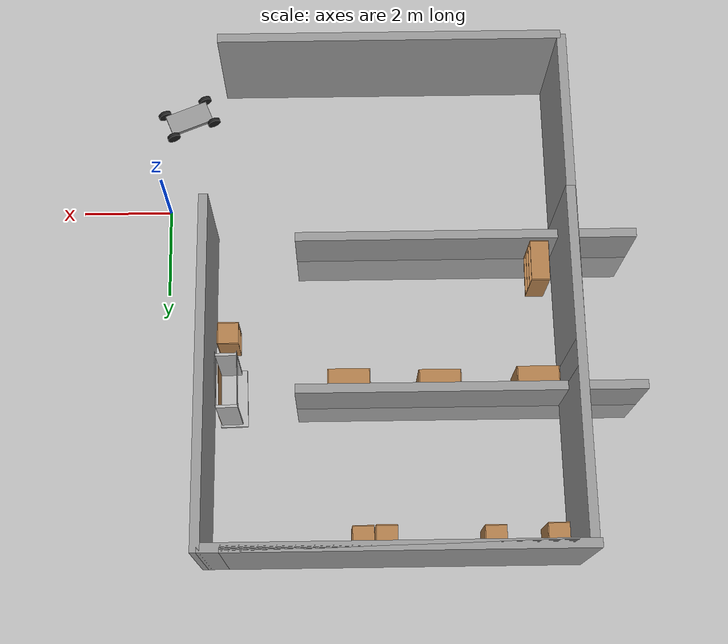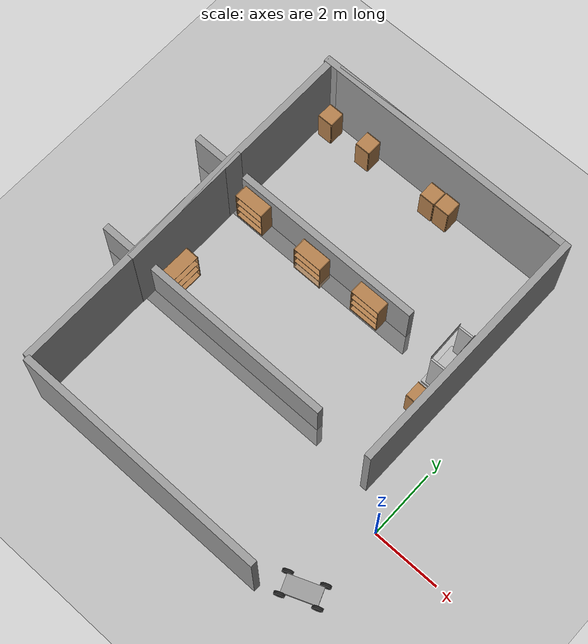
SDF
<sdf version="1.4">
 <world name="default">
  <light name="sun" type="directional">
   <pose>0 0 10 0 -0 0</pose>
   <diffuse>0.8 0.8 0.8 1</diffuse>
   <specular>0.2 0.2 0.2 1</specular>
   <attenuation>
    <range>1000</range>
    <constant>0.9</constant>
    <linear>0.01</linear>
    <quadratic>0.001</quadratic>
   </attenuation>
   <direction>0.5 0.1 -0.9</direction>
  </light>
  <scene><ambient>0.4 0.4 0.4 1</ambient><background>0.7 0.7 0.7 1</background><shadows>1</shadows></scene>
  <physics type="ode">
   <max_step_size>0.01</max_step_size>
   <real_time_factor>1</real_time_factor>
   <real_time_update_rate>100</real_time_update_rate>
   <gravity>0 0 -9.8</gravity>
  </physics>
  <model name="bookshelf">
   <static>1</static>
   <link name="link">
    <inertial><mass>1</mass></inertial>
    <collision name="back">
     <pose>0 0.005 0.6 0 -0 0</pose>
     <geometry><box><size>0.9 0.01 1.2</size></box></geometry>
    </collision>
    <visual name="visual1">
     <pose>0 0.005 0.6 0 -0 0</pose>
     <geometry><box><size>0.9 0.01 1.2</size></box></geometry>
     <material>
      <script><uri>file://media/materials/scripts/gazebo.material</uri><name>Gazebo/Wood</name></script>
     </material>
    </visual>
    <collision name="left_side">
     <pose>0.45 -0.195 0.6 0 -0 0</pose>
     <geometry><box><size>0.02 0.4 1.2</size></box></geometry>
    </collision>
    <visual name="visual2">
     <pose>0.45 -0.195 0.6 0 -0 0</pose>
     <geometry><box><size>0.02 0.4 1.2</size></box></geometry>
     <material>
      <script><uri>file://media/materials/scripts/gazebo.material</uri><name>Gazebo/Wood</name></script>
     </material>
    </visual>
    <collision name="right_side">
     <pose>-0.45 -0.195 0.6 0 -0 0</pose>
     <geometry><box><size>0.02 0.4 1.2</size></box></geometry>
    </collision>
    <visual name="visual3">
     <pose>-0.45 -0.195 0.6 0 -0 0</pose>
     <geometry><box><size>0.02 0.4 1.2</size></box></geometry>
     <material>
      <script><uri>file://media/materials/scripts/gazebo.material</uri><name>Gazebo/Wood</name></script>
     </material>
    </visual>
    <collision name="bottom">
     <pose>0 -0.195 0.03 0 -0 0</pose>
     <geometry><box><size>0.88 0.4 0.06</size></box></geometry>
    </collision>
    <visual name="visual4">
     <pose>0 -0.195 0.03 0 -0 0</pose>
     <geometry><box><size>0.88 0.4 0.06</size></box></geometry>
     <material>
      <script><uri>file://media/materials/scripts/gazebo.material</uri><name>Gazebo/Wood</name></script>
     </material>
    </visual>
    <collision name="top">
     <pose>0 -0.195 1.19 0 -0 0</pose>
     <geometry><box><size>0.88 0.4 0.02</size></box></geometry>
    </collision>
    <visual name="visual5">
     <pose>0 -0.195 1.19 0 -0 0</pose>
     <geometry><box><size>0.88 0.4 0.02</size></box></geometry>
     <material>
      <script><uri>file://media/materials/scripts/gazebo.material</uri><name>Gazebo/Wood</name></script>
     </material>
    </visual>
    <collision name="low_shelf">
     <pose>0 -0.195 0.43 0 -0 0</pose>
     <geometry><box><size>0.88 0.4 0.02</size></box></geometry>
    </collision>
    <visual name="visual6">
     <pose>0 -0.195 0.43 0 -0 0</pose>
     <geometry><box><size>0.88 0.4 0.02</size></box></geometry>
     <material>
      <script><uri>file://media/materials/scripts/gazebo.material</uri><name>Gazebo/Wood</name></script>
     </material>
    </visual>
    <collision name="high_shelf">
     <pose>0 -0.195 0.8 0 -0 0</pose>
     <geometry><box><size>0.88 0.4 0.02</size></box></geometry>
    </collision>
    <visual name="visual7">
     <pose>0 -0.195 0.8 0 -0 0</pose>
     <geometry><box><size>0.88 0.4 0.02</size></box></geometry>
     <material>
      <script><uri>file://media/materials/scripts/gazebo.material</uri><name>Gazebo/Wood</name></script>
     </material>
    </visual>
    <velocity_decay><linear>0</linear><angular>0</angular></velocity_decay>
   </link>
   <pose>-8.08686 4.46557 0 0 -0 0</pose>
  </model>
  <model name="ground_plane_0">
   <static>1</static>
   <link name="link">
    <collision name="collision">
     <geometry><plane><normal>0 0 1</normal><size>100 100</size></plane></geometry>
     <surface><friction><ode><mu>100</mu><mu2>50</mu2></ode></friction></surface>
    </collision>
    <visual name="visual">
     <cast_shadows>0</cast_shadows>
     <geometry><plane><normal>0 0 1</normal><size>100 100</size></plane></geometry>
     <material>
      <script><uri>file://media/materials/scripts/gazebo.material</uri><name>Gazebo/Grey</name></script>
     </material>
    </visual>
    <velocity_decay><linear>0</linear><angular>0</angular></velocity_decay>
   </link>
   <pose>0.497681 0 0 0 -0 0</pose>
  </model>
  <spherical_coordinates>
   <surface_model>EARTH_WGS84</surface_model>
   <latitude_deg>0</latitude_deg>
   <longitude_deg>0</longitude_deg>
   <elevation>0</elevation>
   <heading_deg>0</heading_deg>
  </spherical_coordinates>
  <model name="beer">
   <link name="link">
    <pose>0 0 0.115 0 -0 0</pose>
    <inertial>
     <mass>0.39</mass>
     <inertia><ixx>0.00058</ixx><ixy>0</ixy><ixz>0</ixz><iyy>0.00058</iyy><iyz>0</iyz><izz>0.00019</izz></inertia>
    </inertial>
    <collision name="collision">
     <geometry><cylinder><radius>0.055</radius><length>0.23</length></cylinder></geometry>
    </collision>
    <visual name="visual">
     <geometry><cylinder><radius>0.055</radius><length>0.23</length></cylinder></geometry>
     <material>
      <script>
       <uri>model://beer/materials/scripts</uri>
       <uri>model://beer/materials/textures</uri>
       <name>Beer/Diffuse</name>
      </script>
     </material>
    </visual>
    <velocity_decay><linear>0</linear><angular>0</angular></velocity_decay>
   </link>
   <pose>-5.66457 4.39038 0.192829 -9.5e-05 0.000228 -1.61286</pose>
   <static>0</static>
  </model>
  <model name="bookshelf_0">
   <static>1</static>
   <link name="link">
    <inertial><mass>1</mass></inertial>
    <collision name="back">
     <pose>0 0.005 0.6 0 -0 0</pose>
     <geometry><box><size>0.9 0.01 1.2</size></box></geometry>
    </collision>
    <visual name="visual1">
     <pose>0 0.005 0.6 0 -0 0</pose>
     <geometry><box><size>0.9 0.01 1.2</size></box></geometry>
     <material>
      <script><uri>file://media/materials/scripts/gazebo.material</uri><name>Gazebo/Wood</name></script>
     </material>
    </visual>
    <collision name="left_side">
     <pose>0.45 -0.195 0.6 0 -0 0</pose>
     <geometry><box><size>0.02 0.4 1.2</size></box></geometry>
    </collision>
    <visual name="visual2">
     <pose>0.45 -0.195 0.6 0 -0 0</pose>
     <geometry><box><size>0.02 0.4 1.2</size></box></geometry>
     <material>
      <script><uri>file://media/materials/scripts/gazebo.material</uri><name>Gazebo/Wood</name></script>
     </material>
    </visual>
    <collision name="right_side">
     <pose>-0.45 -0.195 0.6 0 -0 0</pose>
     <geometry><box><size>0.02 0.4 1.2</size></box></geometry>
    </collision>
    <visual name="visual3">
     <pose>-0.45 -0.195 0.6 0 -0 0</pose>
     <geometry><box><size>0.02 0.4 1.2</size></box></geometry>
     <material>
      <script><uri>file://media/materials/scripts/gazebo.material</uri><name>Gazebo/Wood</name></script>
     </material>
    </visual>
    <collision name="bottom">
     <pose>0 -0.195 0.03 0 -0 0</pose>
     <geometry><box><size>0.88 0.4 0.06</size></box></geometry>
    </collision>
    <visual name="visual4">
     <pose>0 -0.195 0.03 0 -0 0</pose>
     <geometry><box><size>0.88 0.4 0.06</size></box></geometry>
     <material>
      <script><uri>file://media/materials/scripts/gazebo.material</uri><name>Gazebo/Wood</name></script>
     </material>
    </visual>
    <collision name="top">
     <pose>0 -0.195 1.19 0 -0 0</pose>
     <geometry><box><size>0.88 0.4 0.02</size></box></geometry>
    </collision>
    <visual name="visual5">
     <pose>0 -0.195 1.19 0 -0 0</pose>
     <geometry><box><size>0.88 0.4 0.02</size></box></geometry>
     <material>
      <script><uri>file://media/materials/scripts/gazebo.material</uri><name>Gazebo/Wood</name></script>
     </material>
    </visual>
    <collision name="low_shelf">
     <pose>0 -0.195 0.43 0 -0 0</pose>
     <geometry><box><size>0.88 0.4 0.02</size></box></geometry>
    </collision>
    <visual name="visual6">
     <pose>0 -0.195 0.43 0 -0 0</pose>
     <geometry><box><size>0.88 0.4 0.02</size></box></geometry>
     <material>
      <script><uri>file://media/materials/scripts/gazebo.material</uri><name>Gazebo/Wood</name></script>
     </material>
    </visual>
    <collision name="high_shelf">
     <pose>0 -0.195 0.8 0 -0 0</pose>
     <geometry><box><size>0.88 0.4 0.02</size></box></geometry>
    </collision>
    <visual name="visual7">
     <pose>0 -0.195 0.8 0 -0 0</pose>
     <geometry><box><size>0.88 0.4 0.02</size></box></geometry>
     <material>
      <script><uri>file://media/materials/scripts/gazebo.material</uri><name>Gazebo/Wood</name></script>
     </material>
    </visual>
    <velocity_decay><linear>0</linear><angular>0</angular></velocity_decay>
   </link>
   <pose>-5.99419 4.44539 -0.246305 0 -0 0</pose>
  </model>
  <model name="cabinet">
   <static>1</static>
   <link name="cabinet_bottom_plate">
    <inertial>
     <pose>0 0 -1 0 -0 0</pose>
     <inertia><ixx>2.05</ixx><ixy>0</ixy><ixz>0</ixz><iyy>2.05</iyy><iyz>0</iyz><izz>2.05</izz></inertia>
     <mass>25</mass>
    </inertial>
    <collision name="cabinet_bottom_plate_geom">
     <pose>0 0 0.01 0 -0 0</pose>
     <geometry><box><size>0.45 0.45 0.02</size></box></geometry>
    </collision>
    <visual name="cabinet_bottom_plate_geom_visual">
     <pose>0 0 0.01 0 -0 0</pose>
     <geometry><box><size>0.45 0.45 0.02</size></box></geometry>
     <material>
      <script><uri>file://media/materials/scripts/gazebo.material</uri><name>Gazebo/Wood</name></script>
     </material>
    </visual>
    <collision name="cabinet_bottom_plate_geom_cabinet_back_plate">
     <pose>0.235 0 0.51 0 -0 0</pose>
     <geometry><box><size>0.02 0.45 1.02</size></box></geometry>
    </collision>
    <visual name="cabinet_bottom_plate_geom_cabinet_back_plate_visual">
     <pose>0.235 0 0.51 0 -0 0</pose>
     <geometry><box><size>0.02 0.45 1.02</size></box></geometry>
     <material>
      <script><uri>file://media/materials/scripts/gazebo.material</uri><name>Gazebo/Wood</name></script>
     </material>
    </visual>
    <collision name="cabinet_bottom_plate_geom_cabinet_left_plate">
     <pose>0 0.235 0.51 0 -0 0</pose>
     <geometry><box><size>0.45 0.02 1.02</size></box></geometry>
    </collision>
    <visual name="cabinet_bottom_plate_geom_cabinet_left_plate_visual">
     <pose>0 0.235 0.51 0 -0 0</pose>
     <geometry><box><size>0.45 0.02 1.02</size></box></geometry>
     <material>
      <script><uri>file://media/materials/scripts/gazebo.material</uri><name>Gazebo/Wood</name></script>
     </material>
    </visual>
    <collision name="cabinet_bottom_plate_geom_cabinet_middle_plate">
     <pose>0 0 0.51 0 -0 0</pose>
     <geometry><box><size>0.45 0.45 0.02</size></box></geometry>
    </collision>
    <visual name="cabinet_bottom_plate_geom_cabinet_middle_plate_visual">
     <pose>0 0 0.51 0 -0 0</pose>
     <geometry><box><size>0.45 0.45 0.02</size></box></geometry>
     <material>
      <script><uri>file://media/materials/scripts/gazebo.material</uri><name>Gazebo/Wood</name></script>
     </material>
    </visual>
    <collision name="cabinet_bottom_plate_geom_cabinet_right_plate">
     <pose>0 -0.235 0.51 0 -0 0</pose>
     <geometry><box><size>0.45 0.02 1.02</size></box></geometry>
    </collision>
    <visual name="cabinet_bottom_plate_geom_cabinet_right_plate_visual">
     <pose>0 -0.235 0.51 0 -0 0</pose>
     <geometry><box><size>0.45 0.02 1.02</size></box></geometry>
     <material>
      <script><uri>file://media/materials/scripts/gazebo.material</uri><name>Gazebo/Wood</name></script>
     </material>
    </visual>
    <collision name="cabinet_bottom_plate_geom_cabinet_top_plate">
     <pose>0 0 1.01 0 -0 0</pose>
     <geometry><box><size>0.45 0.45 0.02</size></box></geometry>
    </collision>
    <visual name="cabinet_bottom_plate_geom_cabinet_top_plate_visual">
     <pose>0 0 1.01 0 -0 0</pose>
     <geometry><box><size>0.45 0.45 0.02</size></box></geometry>
     <material>
      <script><uri>file://media/materials/scripts/gazebo.material</uri><name>Gazebo/Wood</name></script>
     </material>
    </visual>
    <velocity_decay><linear>0</linear><angular>0</angular></velocity_decay>
   </link>
   <pose>-4.77285 7.64898 0.084434 0 -0 0</pose>
  </model>
  <model name="cart_rigid_suspension">
   <link name="chassis">
    <pose>0 0 0.15 0 -0 0</pose>
    <inertial>
     <pose>0.1 0 0 0 -0 0</pose>
     <mass>10</mass>
     <inertia>
      <ixx>0.216667</ixx>
      <iyy>0.841667</iyy>
      <izz>1.04167</izz>
      <ixy>0</ixy>
      <ixz>0</ixz>
      <iyz>0</iyz>
     </inertia>
    </inertial>
    <collision name="collision"><geometry><box><size>1 0.5 0.1</size></box></geometry></collision>
    <visual name="visual">
     <geometry><box><size>1 0.5 0.1</size></box></geometry>
     <material>
      <script><uri>file://media/materials/scripts/gazebo.material</uri><name>Gazebo/Grey</name></script>
     </material>
    </visual>
    <velocity_decay><linear>0</linear><angular>0</angular></velocity_decay>
   </link>
   <link name="wheel_front_left">
    <pose>0.5 0.298 0.15 -1.5708 0 0</pose>
    <inertial>
     <mass>0.5</mass>
     <inertia>
      <ixx>0.00307917</ixx>
      <iyy>0.00307917</iyy>
      <izz>0.005625</izz>
      <ixy>0</ixy>
      <ixz>0</ixz>
      <iyz>0</iyz>
     </inertia>
    </inertial>
    <collision name="collision">
     <geometry><cylinder><radius>0.15</radius><length>0.08</length></cylinder></geometry>
    </collision>
    <visual name="visual">
     <geometry><cylinder><radius>0.15</radius><length>0.08</length></cylinder></geometry>
     <material>
      <script><uri>file://media/materials/scripts/gazebo.material</uri><name>Gazebo/Black</name></script>
     </material>
    </visual>
    <velocity_decay><linear>0</linear><angular>0</angular></velocity_decay>
   </link>
   <joint name="wheel_front_left_spin" type="revolute">
    <parent>chassis</parent>
    <child>wheel_front_left</child>
    <axis><xyz>0 0 1</xyz><limit><lower>-1e+16</lower><upper>1e+16</upper></limit></axis>
   </joint>
   <link name="wheel_front_right">
    <pose>0.5 -0.298 0.15 -1.5708 0 0</pose>
    <inertial>
     <mass>0.5</mass>
     <inertia>
      <ixx>0.00307917</ixx>
      <iyy>0.00307917</iyy>
      <izz>0.005625</izz>
      <ixy>0</ixy>
      <ixz>0</ixz>
      <iyz>0</iyz>
     </inertia>
    </inertial>
    <collision name="collision">
     <geometry><cylinder><radius>0.15</radius><length>0.08</length></cylinder></geometry>
    </collision>
    <visual name="visual">
     <geometry><cylinder><radius>0.15</radius><length>0.08</length></cylinder></geometry>
     <material>
      <script><uri>file://media/materials/scripts/gazebo.material</uri><name>Gazebo/Black</name></script>
     </material>
    </visual>
    <velocity_decay><linear>0</linear><angular>0</angular></velocity_decay>
   </link>
   <joint name="wheel_front_right_spin" type="revolute">
    <parent>chassis</parent>
    <child>wheel_front_right</child>
    <axis><xyz>0 0 1</xyz><limit><lower>-1e+16</lower><upper>1e+16</upper></limit></axis>
   </joint>
   <link name="wheel_rear_left">
    <pose>-0.5 0.298 0.15 -1.5708 0 0</pose>
    <inertial>
     <mass>0.5</mass>
     <inertia>
      <ixx>0.00307917</ixx>
      <iyy>0.00307917</iyy>
      <izz>0.005625</izz>
      <ixy>0</ixy>
      <ixz>0</ixz>
      <iyz>0</iyz>
     </inertia>
    </inertial>
    <collision name="collision">
     <geometry><cylinder><radius>0.15</radius><length>0.08</length></cylinder></geometry>
    </collision>
    <visual name="visual">
     <geometry><cylinder><radius>0.15</radius><length>0.08</length></cylinder></geometry>
     <material>
      <script><uri>file://media/materials/scripts/gazebo.material</uri><name>Gazebo/Black</name></script>
     </material>
    </visual>
    <velocity_decay><linear>0</linear><angular>0</angular></velocity_decay>
   </link>
   <joint name="wheel_rear_left_spin" type="revolute">
    <parent>chassis</parent>
    <child>wheel_rear_left</child>
    <axis><xyz>0 0 1</xyz><limit><lower>-1e+16</lower><upper>1e+16</upper></limit></axis>
   </joint>
   <link name="wheel_rear_right">
    <pose>-0.5 -0.298 0.15 -1.5708 0 0</pose>
    <inertial>
     <mass>0.5</mass>
     <inertia>
      <ixx>0.00307917</ixx>
      <iyy>0.00307917</iyy>
      <izz>0.005625</izz>
      <ixy>0</ixy>
      <ixz>0</ixz>
      <iyz>0</iyz>
     </inertia>
    </inertial>
    <collision name="collision">
     <geometry><cylinder><radius>0.15</radius><length>0.08</length></cylinder></geometry>
    </collision>
    <visual name="visual">
     <geometry><cylinder><radius>0.15</radius><length>0.08</length></cylinder></geometry>
     <material>
      <script><uri>file://media/materials/scripts/gazebo.material</uri><name>Gazebo/Black</name></script>
     </material>
    </visual>
    <velocity_decay><linear>0</linear><angular>0</angular></velocity_decay>
   </link>
   <joint name="wheel_rear_right_spin" type="revolute">
    <parent>chassis</parent>
    <child>wheel_rear_right</child>
    <axis><xyz>0 0 1</xyz><limit><lower>-1e+16</lower><upper>1e+16</upper></limit></axis>
   </joint>
   <pose>-0.376964 -2.30038 7.9e-05 8.2e-05 6.7e-05 -2.76274</pose>
   <static>0</static>
  </model>
  <model name="frc2016_drawbridge">
   <link name="base">
    <inertial>
     <mass>10</mass>
     <pose>0 0 1 0 -0 0</pose>
     <inertia><ixx>3.64907</ixx><ixy>0</ixy><ixz>0</ixz><iyy>4.67075</iyy><iyz>0</iyz><izz>1.66649</izz></inertia>
    </inertial>
    <visual name="platform">
     <pose>0 0 0.0425 0 -0 0</pose>
     <geometry><box><size>1.27 0.5969 0.085</size></box></geometry>
    </visual>
    <collision name="platform">
     <pose>0 0 0.0425 0 -0 0</pose>
     <geometry><box><size>1.27 0.5969 0.085</size></box></geometry>
    </collision>
    <visual name="right_wall">
     <pose>0.55879 0.04444 0.889 0 -0 0</pose>
     <geometry><box><size>0.05715 0.45698 1.77165</size></box></geometry>
    </visual>
    <collision name="right_wall">
     <pose>0.55879 0.04444 0.889 0 -0 0</pose>
     <geometry><box><size>0.05715 0.45698 1.77165</size></box></geometry>
    </collision>
    <visual name="left_wall">
     <pose>-0.55879 0.04444 0.889 0 -0 0</pose>
     <geometry><box><size>0.05715 0.45698 1.77165</size></box></geometry>
    </visual>
    <collision name="left_wall">
     <pose>-0.55879 0.04444 0.889 0 -0 0</pose>
     <geometry><box><size>0.05715 0.45698 1.77165</size></box></geometry>
    </collision>
    <visual name="front_upper_wall">
     <pose>0 0.27611 1.84286 0 -0 0</pose>
     <geometry><box><size>1.1557 0.006347 0.254</size></box></geometry>
    </visual>
    <collision name="front_upper_wall">
     <pose>0 0.27611 1.84286 0 -0 0</pose>
     <geometry><box><size>1.1557 0.006347 0.254</size></box></geometry>
    </collision>
    <visual name="back_upper_wall">
     <pose>0 -0.18722 1.84286 0 -0 0</pose>
     <geometry><box><size>1.1557 0.006347 0.254</size></box></geometry>
    </visual>
    <collision name="back_upper_wall">
     <pose>0 -0.18722 1.84286 0 -0 0</pose>
     <geometry><box><size>1.1557 0.006347 0.254</size></box></geometry>
    </collision>
    <velocity_decay><linear>0</linear><angular>0</angular></velocity_decay>
   </link>
   <link name="bridge">
    <pose>0 0.28245 0.50577 0 -0 0</pose>
    <inertial>
     <mass>2</mass>
     <pose>0 -0.28245 -0.50577 0 -0 0</pose>
     <inertia>
      <ixx>0.139361</ixx>
      <ixy>0</ixy>
      <ixz>0</ixz>
      <iyy>0.357088</iyy>
      <iyz>0</iyz>
      <izz>0.217741</izz>
     </inertia>
    </inertial>
    <visual name="visual">
     <geometry><box><size>1.14298 0.006347 0.9144</size></box></geometry>
     <material><script><name>Gazebo/WoodFloor</name><uri>__default__</uri></script></material>
    </visual>
    <collision name="collision"><geometry><box><size>1.14298 0.006347 0.9144</size></box></geometry></collision>
    <velocity_decay><linear>0</linear><angular>0</angular></velocity_decay>
   </link>
   <joint name="bridge_joint" type="revolute">
    <pose>0 0 -0.4172 0 -0 0</pose>
    <parent>base</parent>
    <child>bridge</child>
    <axis><xyz>1 0 0</xyz><limit><lower>-2</lower><upper>0</upper></limit></axis>
   </joint>
   <pose>-1.49689 4.44058 -0.000207 3e-06 0.000326 -1.54642</pose>
   <static>0</static>
  </model>
  <model name="grey_wall">
   <static>1</static>
   <link name="link">
    <pose>0 0 1.4 0 -0 0</pose>
    <collision name="collision"><geometry><box><size>7.5 0.2 2.8</size></box></geometry></collision>
    <visual name="visual">
     <cast_shadows>0</cast_shadows>
     <geometry><box><size>7.5 0.2 2.8</size></box></geometry>
     <material>
      <script>
       <uri>model://grey_wall/materials/scripts</uri>
       <uri>model://grey_wall/materials/textures</uri>
       <name>vrc/grey_wall</name>
      </script>
     </material>
    </visual>
    <velocity_decay><linear>0</linear><angular>0</angular></velocity_decay>
   </link>
   <pose>-5.17852 8.05791 0 0 -0 0</pose>
  </model>
  <model name="RoboCup SPL Ball_0">
   <static>0</static>
   <link name="ball">
    <inertial>
     <mass>0.0056</mass>
     <inertia>
      <ixx>2.37e-06</ixx>
      <iyy>2.37e-06</iyy>
      <izz>2.37e-06</izz>
      <ixy>0</ixy>
      <ixz>0</ixz>
      <iyz>0</iyz>
     </inertia>
    </inertial>
    <collision name="collision"><geometry><sphere><radius>0.0325</radius></sphere></geometry></collision>
    <visual name="visual">
     <geometry><sphere><radius>0.0325</radius></sphere></geometry>
     <material>
      <script><uri>file://media/materials/scripts/gazebo.material</uri><name>Gazebo/RedBright</name></script>
     </material>
    </visual>
    <velocity_decay><linear>0</linear><angular>0</angular></velocity_decay>
   </link>
   <pose>-6.12244 4.31862 0.226195 0.155685 -1.25458 1.90313</pose>
  </model>
  <model name="grey_wall_0">
   <static>1</static>
   <link name="link">
    <pose>0 0 1.4 0 -0 0</pose>
    <collision name="collision"><geometry><box><size>7.5 0.2 2.8</size></box></geometry></collision>
    <visual name="visual">
     <cast_shadows>0</cast_shadows>
     <geometry><box><size>7.5 0.2 2.8</size></box></geometry>
     <material>
      <script>
       <uri>model://grey_wall/materials/scripts</uri>
       <uri>model://grey_wall/materials/textures</uri>
       <name>vrc/grey_wall</name>
      </script>
     </material>
    </visual>
    <velocity_decay><linear>0</linear><angular>0</angular></velocity_decay>
   </link>
   <pose>-8.76574 0.752835 0 0 0 -1.57097</pose>
  </model>
  <model name="grey_wall_1">
   <static>1</static>
   <link name="link">
    <pose>0 0 1.4 0 -0 0</pose>
    <collision name="collision"><geometry><box><size>7.5 0.2 2.8</size></box></geometry></collision>
    <visual name="visual">
     <cast_shadows>0</cast_shadows>
     <geometry><box><size>7.5 0.2 2.8</size></box></geometry>
     <material>
      <script>
       <uri>model://grey_wall/materials/scripts</uri>
       <uri>model://grey_wall/materials/textures</uri>
       <name>vrc/grey_wall</name>
      </script>
     </material>
    </visual>
    <velocity_decay><linear>0</linear><angular>0</angular></velocity_decay>
   </link>
   <pose>-6.62284 4.56888 -1.32865 0 -0 0</pose>
  </model>
  <model name="grey_wall_2">
   <static>1</static>
   <link name="link">
    <pose>0 0 1.4 0 -0 0</pose>
    <collision name="collision"><geometry><box><size>7.5 0.2 2.8</size></box></geometry></collision>
    <visual name="visual">
     <cast_shadows>0</cast_shadows>
     <geometry><box><size>7.5 0.2 2.8</size></box></geometry>
     <material>
      <script>
       <uri>model://grey_wall/materials/scripts</uri>
       <uri>model://grey_wall/materials/textures</uri>
       <name>vrc/grey_wall</name>
      </script>
     </material>
    </visual>
    <velocity_decay><linear>0</linear><angular>0</angular></velocity_decay>
   </link>
   <pose>-8.76656 4.31578 0 0 0 -1.56736</pose>
  </model>
  <model name="grey_wall_3">
   <static>1</static>
   <link name="link">
    <pose>0 0 1.4 0 -0 0</pose>
    <collision name="collision"><geometry><box><size>7.5 0.2 2.8</size></box></geometry></collision>
    <visual name="visual">
     <cast_shadows>0</cast_shadows>
     <geometry><box><size>7.5 0.2 2.8</size></box></geometry>
     <material>
      <script>
       <uri>model://grey_wall/materials/scripts</uri>
       <uri>model://grey_wall/materials/textures</uri>
       <name>vrc/grey_wall</name>
      </script>
     </material>
    </visual>
    <velocity_decay><linear>0</linear><angular>0</angular></velocity_decay>
   </link>
   <pose>-6.63685 1.11695 -1.429 0 -0 0</pose>
  </model>
  <model name="grey_wall_4">
   <static>1</static>
   <link name="link">
    <pose>0 0 1.4 0 -0 0</pose>
    <collision name="collision"><geometry><box><size>7.5 0.2 2.8</size></box></geometry></collision>
    <visual name="visual">
     <cast_shadows>0</cast_shadows>
     <geometry><box><size>7.5 0.2 2.8</size></box></geometry>
     <material>
      <script>
       <uri>model://grey_wall/materials/scripts</uri>
       <uri>model://grey_wall/materials/textures</uri>
       <name>vrc/grey_wall</name>
      </script>
     </material>
    </visual>
    <velocity_decay><linear>0</linear><angular>0</angular></velocity_decay>
   </link>
   <pose>-5 -3 0 0 -0 0</pose>
  </model>
  <model name="bookshelf_1">
   <static>1</static>
   <link name="link">
    <inertial><mass>1</mass></inertial>
    <collision name="back">
     <pose>0 0.005 0.6 0 -0 0</pose>
     <geometry><box><size>0.9 0.01 1.2</size></box></geometry>
    </collision>
    <visual name="visual1">
     <pose>0 0.005 0.6 0 -0 0</pose>
     <geometry><box><size>0.9 0.01 1.2</size></box></geometry>
     <material>
      <script><uri>file://media/materials/scripts/gazebo.material</uri><name>Gazebo/Wood</name></script>
     </material>
    </visual>
    <collision name="left_side">
     <pose>0.45 -0.195 0.6 0 -0 0</pose>
     <geometry><box><size>0.02 0.4 1.2</size></box></geometry>
    </collision>
    <visual name="visual2">
     <pose>0.45 -0.195 0.6 0 -0 0</pose>
     <geometry><box><size>0.02 0.4 1.2</size></box></geometry>
     <material>
      <script><uri>file://media/materials/scripts/gazebo.material</uri><name>Gazebo/Wood</name></script>
     </material>
    </visual>
    <collision name="right_side">
     <pose>-0.45 -0.195 0.6 0 -0 0</pose>
     <geometry><box><size>0.02 0.4 1.2</size></box></geometry>
    </collision>
    <visual name="visual3">
     <pose>-0.45 -0.195 0.6 0 -0 0</pose>
     <geometry><box><size>0.02 0.4 1.2</size></box></geometry>
     <material>
      <script><uri>file://media/materials/scripts/gazebo.material</uri><name>Gazebo/Wood</name></script>
     </material>
    </visual>
    <collision name="bottom">
     <pose>0 -0.195 0.03 0 -0 0</pose>
     <geometry><box><size>0.88 0.4 0.06</size></box></geometry>
    </collision>
    <visual name="visual4">
     <pose>0 -0.195 0.03 0 -0 0</pose>
     <geometry><box><size>0.88 0.4 0.06</size></box></geometry>
     <material>
      <script><uri>file://media/materials/scripts/gazebo.material</uri><name>Gazebo/Wood</name></script>
     </material>
    </visual>
    <collision name="top">
     <pose>0 -0.195 1.19 0 -0 0</pose>
     <geometry><box><size>0.88 0.4 0.02</size></box></geometry>
    </collision>
    <visual name="visual5">
     <pose>0 -0.195 1.19 0 -0 0</pose>
     <geometry><box><size>0.88 0.4 0.02</size></box></geometry>
     <material>
      <script><uri>file://media/materials/scripts/gazebo.material</uri><name>Gazebo/Wood</name></script>
     </material>
    </visual>
    <collision name="low_shelf">
     <pose>0 -0.195 0.43 0 -0 0</pose>
     <geometry><box><size>0.88 0.4 0.02</size></box></geometry>
    </collision>
    <visual name="visual6">
     <pose>0 -0.195 0.43 0 -0 0</pose>
     <geometry><box><size>0.88 0.4 0.02</size></box></geometry>
     <material>
      <script><uri>file://media/materials/scripts/gazebo.material</uri><name>Gazebo/Wood</name></script>
     </material>
    </visual>
    <collision name="high_shelf">
     <pose>0 -0.195 0.8 0 -0 0</pose>
     <geometry><box><size>0.88 0.4 0.02</size></box></geometry>
    </collision>
    <visual name="visual7">
     <pose>0 -0.195 0.8 0 -0 0</pose>
     <geometry><box><size>0.88 0.4 0.02</size></box></geometry>
     <material>
      <script><uri>file://media/materials/scripts/gazebo.material</uri><name>Gazebo/Wood</name></script>
     </material>
    </visual>
    <velocity_decay><linear>0</linear><angular>0</angular></velocity_decay>
   </link>
   <pose>-4.02528 4.4712 0 0 -0 0</pose>
  </model>
  <model name="bookshelf_2">
   <static>1</static>
   <link name="link">
    <inertial><mass>1</mass></inertial>
    <collision name="back">
     <pose>0 0.005 0.6 0 -0 0</pose>
     <geometry><box><size>0.9 0.01 1.2</size></box></geometry>
    </collision>
    <visual name="visual1">
     <pose>0 0.005 0.6 0 -0 0</pose>
     <geometry><box><size>0.9 0.01 1.2</size></box></geometry>
     <material>
      <script><uri>file://media/materials/scripts/gazebo.material</uri><name>Gazebo/Wood</name></script>
     </material>
    </visual>
    <collision name="left_side">
     <pose>0.45 -0.195 0.6 0 -0 0</pose>
     <geometry><box><size>0.02 0.4 1.2</size></box></geometry>
    </collision>
    <visual name="visual2">
     <pose>0.45 -0.195 0.6 0 -0 0</pose>
     <geometry><box><size>0.02 0.4 1.2</size></box></geometry>
     <material>
      <script><uri>file://media/materials/scripts/gazebo.material</uri><name>Gazebo/Wood</name></script>
     </material>
    </visual>
    <collision name="right_side">
     <pose>-0.45 -0.195 0.6 0 -0 0</pose>
     <geometry><box><size>0.02 0.4 1.2</size></box></geometry>
    </collision>
    <visual name="visual3">
     <pose>-0.45 -0.195 0.6 0 -0 0</pose>
     <geometry><box><size>0.02 0.4 1.2</size></box></geometry>
     <material>
      <script><uri>file://media/materials/scripts/gazebo.material</uri><name>Gazebo/Wood</name></script>
     </material>
    </visual>
    <collision name="bottom">
     <pose>0 -0.195 0.03 0 -0 0</pose>
     <geometry><box><size>0.88 0.4 0.06</size></box></geometry>
    </collision>
    <visual name="visual4">
     <pose>0 -0.195 0.03 0 -0 0</pose>
     <geometry><box><size>0.88 0.4 0.06</size></box></geometry>
     <material>
      <script><uri>file://media/materials/scripts/gazebo.material</uri><name>Gazebo/Wood</name></script>
     </material>
    </visual>
    <collision name="top">
     <pose>0 -0.195 1.19 0 -0 0</pose>
     <geometry><box><size>0.88 0.4 0.02</size></box></geometry>
    </collision>
    <visual name="visual5">
     <pose>0 -0.195 1.19 0 -0 0</pose>
     <geometry><box><size>0.88 0.4 0.02</size></box></geometry>
     <material>
      <script><uri>file://media/materials/scripts/gazebo.material</uri><name>Gazebo/Wood</name></script>
     </material>
    </visual>
    <collision name="low_shelf">
     <pose>0 -0.195 0.43 0 -0 0</pose>
     <geometry><box><size>0.88 0.4 0.02</size></box></geometry>
    </collision>
    <visual name="visual6">
     <pose>0 -0.195 0.43 0 -0 0</pose>
     <geometry><box><size>0.88 0.4 0.02</size></box></geometry>
     <material>
      <script><uri>file://media/materials/scripts/gazebo.material</uri><name>Gazebo/Wood</name></script>
     </material>
    </visual>
    <collision name="high_shelf">
     <pose>0 -0.195 0.8 0 -0 0</pose>
     <geometry><box><size>0.88 0.4 0.02</size></box></geometry>
    </collision>
    <visual name="visual7">
     <pose>0 -0.195 0.8 0 -0 0</pose>
     <geometry><box><size>0.88 0.4 0.02</size></box></geometry>
     <material>
      <script><uri>file://media/materials/scripts/gazebo.material</uri><name>Gazebo/Wood</name></script>
     </material>
    </visual>
    <velocity_decay><linear>0</linear><angular>0</angular></velocity_decay>
   </link>
   <pose>-8.45581 1.67502 0 0 -0 1.55887</pose>
  </model>
  <model name="grey_wall_5">
   <static>1</static>
   <link name="link">
    <pose>0 0 1.4 0 -0 0</pose>
    <collision name="collision"><geometry><box><size>7.5 0.2 2.8</size></box></geometry></collision>
    <visual name="visual">
     <cast_shadows>0</cast_shadows>
     <geometry><box><size>7.5 0.2 2.8</size></box></geometry>
     <material>
      <script>
       <uri>model://grey_wall/materials/scripts</uri>
       <uri>model://grey_wall/materials/textures</uri>
       <name>vrc/grey_wall</name>
      </script>
     </material>
    </visual>
    <velocity_decay><linear>0</linear><angular>0</angular></velocity_decay>
   </link>
   <pose>-0.976318 4.40571 0 0 -0 1.5641</pose>
  </model>
  <model name="grey_wall_6">
   <static>1</static>
   <link name="link">
    <pose>0 0 1.4 0 -0 0</pose>
    <collision name="collision"><geometry><box><size>7.5 0.2 2.8</size></box></geometry></collision>
    <visual name="visual">
     <cast_shadows>0</cast_shadows>
     <geometry><box><size>7.5 0.2 2.8</size></box></geometry>
     <material>
      <script>
       <uri>model://grey_wall/materials/scripts</uri>
       <uri>model://grey_wall/materials/textures</uri>
       <name>vrc/grey_wall</name>
      </script>
     </material>
    </visual>
    <velocity_decay><linear>0</linear><angular>0</angular></velocity_decay>
   </link>
   <pose>-4.72984 8.05628 0 0 -0 0</pose>
  </model>
  <model name="cabinet_0">
   <static>1</static>
   <link name="cabinet_bottom_plate">
    <inertial>
     <pose>0 0 -1 0 -0 0</pose>
     <inertia><ixx>2.05</ixx><ixy>0</ixy><ixz>0</ixz><iyy>2.05</iyy><iyz>0</iyz><izz>2.05</izz></inertia>
     <mass>25</mass>
    </inertial>
    <collision name="cabinet_bottom_plate_geom">
     <pose>0 0 0.01 0 -0 0</pose>
     <geometry><box><size>0.45 0.45 0.02</size></box></geometry>
    </collision>
    <visual name="cabinet_bottom_plate_geom_visual">
     <pose>0 0 0.01 0 -0 0</pose>
     <geometry><box><size>0.45 0.45 0.02</size></box></geometry>
     <material>
      <script><uri>file://media/materials/scripts/gazebo.material</uri><name>Gazebo/Wood</name></script>
     </material>
    </visual>
    <collision name="cabinet_bottom_plate_geom_cabinet_back_plate">
     <pose>0.235 0 0.51 0 -0 0</pose>
     <geometry><box><size>0.02 0.45 1.02</size></box></geometry>
    </collision>
    <visual name="cabinet_bottom_plate_geom_cabinet_back_plate_visual">
     <pose>0.235 0 0.51 0 -0 0</pose>
     <geometry><box><size>0.02 0.45 1.02</size></box></geometry>
     <material>
      <script><uri>file://media/materials/scripts/gazebo.material</uri><name>Gazebo/Wood</name></script>
     </material>
    </visual>
    <collision name="cabinet_bottom_plate_geom_cabinet_left_plate">
     <pose>0 0.235 0.51 0 -0 0</pose>
     <geometry><box><size>0.45 0.02 1.02</size></box></geometry>
    </collision>
    <visual name="cabinet_bottom_plate_geom_cabinet_left_plate_visual">
     <pose>0 0.235 0.51 0 -0 0</pose>
     <geometry><box><size>0.45 0.02 1.02</size></box></geometry>
     <material>
      <script><uri>file://media/materials/scripts/gazebo.material</uri><name>Gazebo/Wood</name></script>
     </material>
    </visual>
    <collision name="cabinet_bottom_plate_geom_cabinet_middle_plate">
     <pose>0 0 0.51 0 -0 0</pose>
     <geometry><box><size>0.45 0.45 0.02</size></box></geometry>
    </collision>
    <visual name="cabinet_bottom_plate_geom_cabinet_middle_plate_visual">
     <pose>0 0 0.51 0 -0 0</pose>
     <geometry><box><size>0.45 0.45 0.02</size></box></geometry>
     <material>
      <script><uri>file://media/materials/scripts/gazebo.material</uri><name>Gazebo/Wood</name></script>
     </material>
    </visual>
    <collision name="cabinet_bottom_plate_geom_cabinet_right_plate">
     <pose>0 -0.235 0.51 0 -0 0</pose>
     <geometry><box><size>0.45 0.02 1.02</size></box></geometry>
    </collision>
    <visual name="cabinet_bottom_plate_geom_cabinet_right_plate_visual">
     <pose>0 -0.235 0.51 0 -0 0</pose>
     <geometry><box><size>0.45 0.02 1.02</size></box></geometry>
     <material>
      <script><uri>file://media/materials/scripts/gazebo.material</uri><name>Gazebo/Wood</name></script>
     </material>
    </visual>
    <collision name="cabinet_bottom_plate_geom_cabinet_top_plate">
     <pose>0 0 1.01 0 -0 0</pose>
     <geometry><box><size>0.45 0.45 0.02</size></box></geometry>
    </collision>
    <visual name="cabinet_bottom_plate_geom_cabinet_top_plate_visual">
     <pose>0 0 1.01 0 -0 0</pose>
     <geometry><box><size>0.45 0.45 0.02</size></box></geometry>
     <material>
      <script><uri>file://media/materials/scripts/gazebo.material</uri><name>Gazebo/Wood</name></script>
     </material>
    </visual>
    <velocity_decay><linear>0</linear><angular>0</angular></velocity_decay>
   </link>
   <pose>-4.28322 7.6596 0.090283 0 -0 0</pose>
  </model>
  <model name="cabinet_1">
   <static>1</static>
   <link name="cabinet_bottom_plate">
    <inertial>
     <pose>0 0 -1 0 -0 0</pose>
     <inertia><ixx>2.05</ixx><ixy>0</ixy><ixz>0</ixz><iyy>2.05</iyy><iyz>0</iyz><izz>2.05</izz></inertia>
     <mass>25</mass>
    </inertial>
    <collision name="cabinet_bottom_plate_geom">
     <pose>0 0 0.01 0 -0 0</pose>
     <geometry><box><size>0.45 0.45 0.02</size></box></geometry>
    </collision>
    <visual name="cabinet_bottom_plate_geom_visual">
     <pose>0 0 0.01 0 -0 0</pose>
     <geometry><box><size>0.45 0.45 0.02</size></box></geometry>
     <material>
      <script><uri>file://media/materials/scripts/gazebo.material</uri><name>Gazebo/Wood</name></script>
     </material>
    </visual>
    <collision name="cabinet_bottom_plate_geom_cabinet_back_plate">
     <pose>0.235 0 0.51 0 -0 0</pose>
     <geometry><box><size>0.02 0.45 1.02</size></box></geometry>
    </collision>
    <visual name="cabinet_bottom_plate_geom_cabinet_back_plate_visual">
     <pose>0.235 0 0.51 0 -0 0</pose>
     <geometry><box><size>0.02 0.45 1.02</size></box></geometry>
     <material>
      <script><uri>file://media/materials/scripts/gazebo.material</uri><name>Gazebo/Wood</name></script>
     </material>
    </visual>
    <collision name="cabinet_bottom_plate_geom_cabinet_left_plate">
     <pose>0 0.235 0.51 0 -0 0</pose>
     <geometry><box><size>0.45 0.02 1.02</size></box></geometry>
    </collision>
    <visual name="cabinet_bottom_plate_geom_cabinet_left_plate_visual">
     <pose>0 0.235 0.51 0 -0 0</pose>
     <geometry><box><size>0.45 0.02 1.02</size></box></geometry>
     <material>
      <script><uri>file://media/materials/scripts/gazebo.material</uri><name>Gazebo/Wood</name></script>
     </material>
    </visual>
    <collision name="cabinet_bottom_plate_geom_cabinet_middle_plate">
     <pose>0 0 0.51 0 -0 0</pose>
     <geometry><box><size>0.45 0.45 0.02</size></box></geometry>
    </collision>
    <visual name="cabinet_bottom_plate_geom_cabinet_middle_plate_visual">
     <pose>0 0 0.51 0 -0 0</pose>
     <geometry><box><size>0.45 0.45 0.02</size></box></geometry>
     <material>
      <script><uri>file://media/materials/scripts/gazebo.material</uri><name>Gazebo/Wood</name></script>
     </material>
    </visual>
    <collision name="cabinet_bottom_plate_geom_cabinet_right_plate">
     <pose>0 -0.235 0.51 0 -0 0</pose>
     <geometry><box><size>0.45 0.02 1.02</size></box></geometry>
    </collision>
    <visual name="cabinet_bottom_plate_geom_cabinet_right_plate_visual">
     <pose>0 -0.235 0.51 0 -0 0</pose>
     <geometry><box><size>0.45 0.02 1.02</size></box></geometry>
     <material>
      <script><uri>file://media/materials/scripts/gazebo.material</uri><name>Gazebo/Wood</name></script>
     </material>
    </visual>
    <collision name="cabinet_bottom_plate_geom_cabinet_top_plate">
     <pose>0 0 1.01 0 -0 0</pose>
     <geometry><box><size>0.45 0.45 0.02</size></box></geometry>
    </collision>
    <visual name="cabinet_bottom_plate_geom_cabinet_top_plate_visual">
     <pose>0 0 1.01 0 -0 0</pose>
     <geometry><box><size>0.45 0.45 0.02</size></box></geometry>
     <material>
      <script><uri>file://media/materials/scripts/gazebo.material</uri><name>Gazebo/Wood</name></script>
     </material>
    </visual>
    <velocity_decay><linear>0</linear><angular>0</angular></velocity_decay>
   </link>
   <pose>-1.41707 3.19735 0 0 -0 0</pose>
  </model>
  <model name="cabinet_2">
   <static>1</static>
   <link name="cabinet_bottom_plate">
    <inertial>
     <pose>0 0 -1 0 -0 0</pose>
     <inertia><ixx>2.05</ixx><ixy>0</ixy><ixz>0</ixz><iyy>2.05</iyy><iyz>0</iyz><izz>2.05</izz></inertia>
     <mass>25</mass>
    </inertial>
    <collision name="cabinet_bottom_plate_geom">
     <pose>0 0 0.01 0 -0 0</pose>
     <geometry><box><size>0.45 0.45 0.02</size></box></geometry>
    </collision>
    <visual name="cabinet_bottom_plate_geom_visual">
     <pose>0 0 0.01 0 -0 0</pose>
     <geometry><box><size>0.45 0.45 0.02</size></box></geometry>
     <material>
      <script><uri>file://media/materials/scripts/gazebo.material</uri><name>Gazebo/Wood</name></script>
     </material>
    </visual>
    <collision name="cabinet_bottom_plate_geom_cabinet_back_plate">
     <pose>0.235 0 0.51 0 -0 0</pose>
     <geometry><box><size>0.02 0.45 1.02</size></box></geometry>
    </collision>
    <visual name="cabinet_bottom_plate_geom_cabinet_back_plate_visual">
     <pose>0.235 0 0.51 0 -0 0</pose>
     <geometry><box><size>0.02 0.45 1.02</size></box></geometry>
     <material>
      <script><uri>file://media/materials/scripts/gazebo.material</uri><name>Gazebo/Wood</name></script>
     </material>
    </visual>
    <collision name="cabinet_bottom_plate_geom_cabinet_left_plate">
     <pose>0 0.235 0.51 0 -0 0</pose>
     <geometry><box><size>0.45 0.02 1.02</size></box></geometry>
    </collision>
    <visual name="cabinet_bottom_plate_geom_cabinet_left_plate_visual">
     <pose>0 0.235 0.51 0 -0 0</pose>
     <geometry><box><size>0.45 0.02 1.02</size></box></geometry>
     <material>
      <script><uri>file://media/materials/scripts/gazebo.material</uri><name>Gazebo/Wood</name></script>
     </material>
    </visual>
    <collision name="cabinet_bottom_plate_geom_cabinet_middle_plate">
     <pose>0 0 0.51 0 -0 0</pose>
     <geometry><box><size>0.45 0.45 0.02</size></box></geometry>
    </collision>
    <visual name="cabinet_bottom_plate_geom_cabinet_middle_plate_visual">
     <pose>0 0 0.51 0 -0 0</pose>
     <geometry><box><size>0.45 0.45 0.02</size></box></geometry>
     <material>
      <script><uri>file://media/materials/scripts/gazebo.material</uri><name>Gazebo/Wood</name></script>
     </material>
    </visual>
    <collision name="cabinet_bottom_plate_geom_cabinet_right_plate">
     <pose>0 -0.235 0.51 0 -0 0</pose>
     <geometry><box><size>0.45 0.02 1.02</size></box></geometry>
    </collision>
    <visual name="cabinet_bottom_plate_geom_cabinet_right_plate_visual">
     <pose>0 -0.235 0.51 0 -0 0</pose>
     <geometry><box><size>0.45 0.02 1.02</size></box></geometry>
     <material>
      <script><uri>file://media/materials/scripts/gazebo.material</uri><name>Gazebo/Wood</name></script>
     </material>
    </visual>
    <collision name="cabinet_bottom_plate_geom_cabinet_top_plate">
     <pose>0 0 1.01 0 -0 0</pose>
     <geometry><box><size>0.45 0.45 0.02</size></box></geometry>
    </collision>
    <visual name="cabinet_bottom_plate_geom_cabinet_top_plate_visual">
     <pose>0 0 1.01 0 -0 0</pose>
     <geometry><box><size>0.45 0.45 0.02</size></box></geometry>
     <material>
      <script><uri>file://media/materials/scripts/gazebo.material</uri><name>Gazebo/Wood</name></script>
     </material>
    </visual>
    <velocity_decay><linear>0</linear><angular>0</angular></velocity_decay>
   </link>
   <pose>-8.36453 7.63273 0 0 -0 0</pose>
  </model>
  <model name="cabinet_3">
   <static>1</static>
   <link name="cabinet_bottom_plate">
    <inertial>
     <pose>0 0 -1 0 -0 0</pose>
     <inertia><ixx>2.05</ixx><ixy>0</ixy><ixz>0</ixz><iyy>2.05</iyy><iyz>0</iyz><izz>2.05</izz></inertia>
     <mass>25</mass>
    </inertial>
    <collision name="cabinet_bottom_plate_geom">
     <pose>0 0 0.01 0 -0 0</pose>
     <geometry><box><size>0.45 0.45 0.02</size></box></geometry>
    </collision>
    <visual name="cabinet_bottom_plate_geom_visual">
     <pose>0 0 0.01 0 -0 0</pose>
     <geometry><box><size>0.45 0.45 0.02</size></box></geometry>
     <material>
      <script><uri>file://media/materials/scripts/gazebo.material</uri><name>Gazebo/Wood</name></script>
     </material>
    </visual>
    <collision name="cabinet_bottom_plate_geom_cabinet_back_plate">
     <pose>0.235 0 0.51 0 -0 0</pose>
     <geometry><box><size>0.02 0.45 1.02</size></box></geometry>
    </collision>
    <visual name="cabinet_bottom_plate_geom_cabinet_back_plate_visual">
     <pose>0.235 0 0.51 0 -0 0</pose>
     <geometry><box><size>0.02 0.45 1.02</size></box></geometry>
     <material>
      <script><uri>file://media/materials/scripts/gazebo.material</uri><name>Gazebo/Wood</name></script>
     </material>
    </visual>
    <collision name="cabinet_bottom_plate_geom_cabinet_left_plate">
     <pose>0 0.235 0.51 0 -0 0</pose>
     <geometry><box><size>0.45 0.02 1.02</size></box></geometry>
    </collision>
    <visual name="cabinet_bottom_plate_geom_cabinet_left_plate_visual">
     <pose>0 0.235 0.51 0 -0 0</pose>
     <geometry><box><size>0.45 0.02 1.02</size></box></geometry>
     <material>
      <script><uri>file://media/materials/scripts/gazebo.material</uri><name>Gazebo/Wood</name></script>
     </material>
    </visual>
    <collision name="cabinet_bottom_plate_geom_cabinet_middle_plate">
     <pose>0 0 0.51 0 -0 0</pose>
     <geometry><box><size>0.45 0.45 0.02</size></box></geometry>
    </collision>
    <visual name="cabinet_bottom_plate_geom_cabinet_middle_plate_visual">
     <pose>0 0 0.51 0 -0 0</pose>
     <geometry><box><size>0.45 0.45 0.02</size></box></geometry>
     <material>
      <script><uri>file://media/materials/scripts/gazebo.material</uri><name>Gazebo/Wood</name></script>
     </material>
    </visual>
    <collision name="cabinet_bottom_plate_geom_cabinet_right_plate">
     <pose>0 -0.235 0.51 0 -0 0</pose>
     <geometry><box><size>0.45 0.02 1.02</size></box></geometry>
    </collision>
    <visual name="cabinet_bottom_plate_geom_cabinet_right_plate_visual">
     <pose>0 -0.235 0.51 0 -0 0</pose>
     <geometry><box><size>0.45 0.02 1.02</size></box></geometry>
     <material>
      <script><uri>file://media/materials/scripts/gazebo.material</uri><name>Gazebo/Wood</name></script>
     </material>
    </visual>
    <collision name="cabinet_bottom_plate_geom_cabinet_top_plate">
     <pose>0 0 1.01 0 -0 0</pose>
     <geometry><box><size>0.45 0.45 0.02</size></box></geometry>
    </collision>
    <visual name="cabinet_bottom_plate_geom_cabinet_top_plate_visual">
     <pose>0 0 1.01 0 -0 0</pose>
     <geometry><box><size>0.45 0.45 0.02</size></box></geometry>
     <material>
      <script><uri>file://media/materials/scripts/gazebo.material</uri><name>Gazebo/Wood</name></script>
     </material>
    </visual>
    <velocity_decay><linear>0</linear><angular>0</angular></velocity_decay>
   </link>
   <pose>-7.05247 7.66435 0 0 -0 0</pose>
  </model>
 </world>
</sdf>
